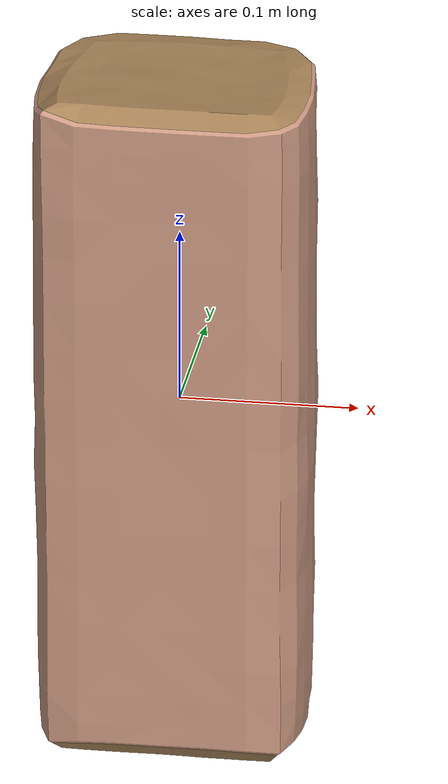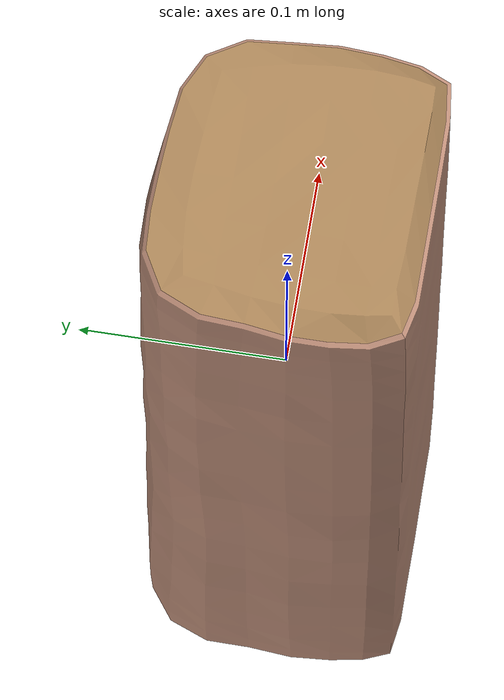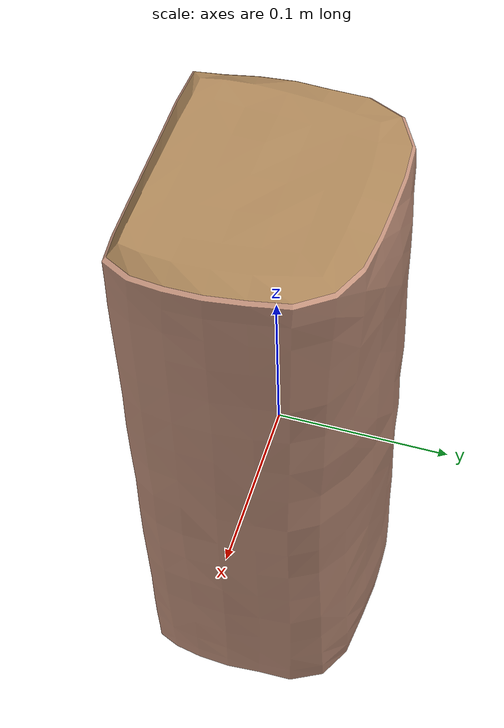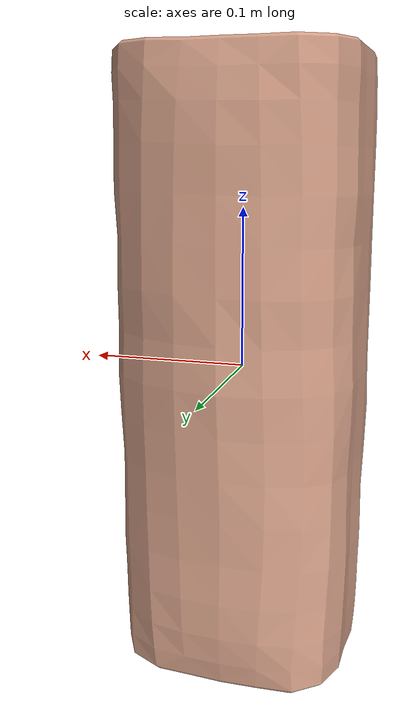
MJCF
<mujoco model="Bread_29">
  <compiler autolimits="true" boundmass="0.01" angle="radian"/>
  <default>
    <default class="/">
      <default class="__VISUAL_MJT__">
        <geom contype="0" conaffinity="0" group="0"/>
      </default>
      <default class="__STRUCTURAL_MJT__">
        <geom contype="8" conaffinity="15" group="4" friction="0.90000000000000002 0.90000000000000002 0.001" solref="0.025000000000000001 1" solimp="0.998 0.998 0.001"/>
      </default>
      <default class="__DYNAMIC_MJT__">
        <geom contype="1" conaffinity="15" group="4" friction="0.90000000000000002 0.90000000000000002 0.001" solref="0.025000000000000001 1" solimp="0.998 0.998 0.001"/>
      </default>
    </default>
  </default>
  <asset>
    <texture name="BreadSlice_Mat2" type="2d" file="BreadSlice_AlbedoTransparency.png"/>
    <material name="material_BreadSlice_Mat2" class="/" texture="BreadSlice_Mat2" specular="0.5" shininess="0.5" rgba="0.87735850000000004 0.71302310000000002 0.50075650000000005 1"/>
    <texture name="WhiteBread_Mat2" type="2d" file="WhiteBread_AlbedoTransparency.png"/>
    <material name="material_WhiteBread_Mat2" class="/" texture="WhiteBread_Mat2" specular="0.5" shininess="0.5" rgba="0.875 0.65758110000000003 0.55974270000000004 1"/>
    <mesh name="Bread_29_whitebread_b_mesh_0" class="/" file="Bread_29_whitebread_b_mesh/Bread_29_whitebread_b_mesh_0.obj" scale="1 1 1"/>
    <mesh name="Bread_29_whitebread_b_mesh_1" class="/" file="Bread_29_whitebread_b_mesh/Bread_29_whitebread_b_mesh_1.obj" scale="1 1 1"/>
  </asset>
  <worldbody>
    <body name="Bread_29">
      <joint name="Bread_29_free" class="/" type="free" pos="0 0 0" axis="0 0 1" stiffness="0" range="0 0" armature="0" damping="0.10000000000000001" frictionloss="0"/>
      <body name="Bread_29_whitebread_b_mesh" pos="-0 0.0042599999999999999 0" quat="1 0 0 0">
        <geom name="Bread_29_whitebread_b_mesh_0" class="__VISUAL_MJT__" type="mesh" material="material_BreadSlice_Mat2" shellinertia="false" mesh="Bread_29_whitebread_b_mesh_0"/>
        <geom name="Bread_29_whitebread_b_mesh_1" class="__VISUAL_MJT__" type="mesh" material="material_WhiteBread_Mat2" shellinertia="false" mesh="Bread_29_whitebread_b_mesh_1"/>
        <geom name="Bread_29_PrimitiveCollider_0" class="__DYNAMIC_MJT__" type="box" size="0.078775964677333832 0.068688400089740753 0.19566152989864349" rgba="0 1 0 1" pos="-0 -0.00426483154296875 0" quat="1 0 0 0"/>
      </body>
    </body>
  </worldbody>
</mujoco>
